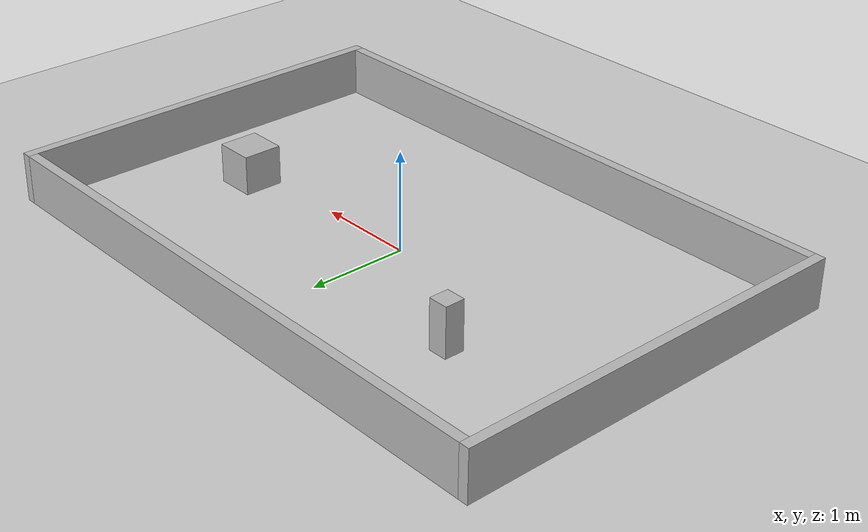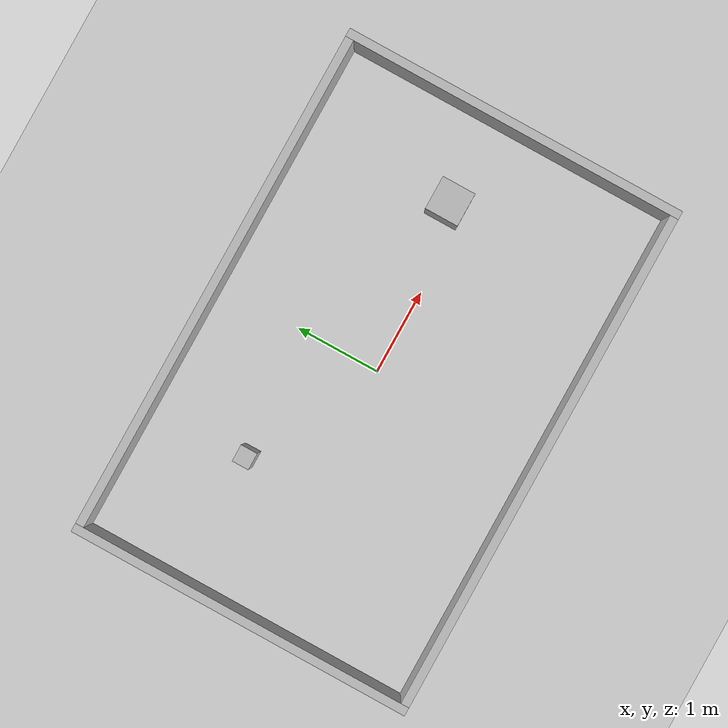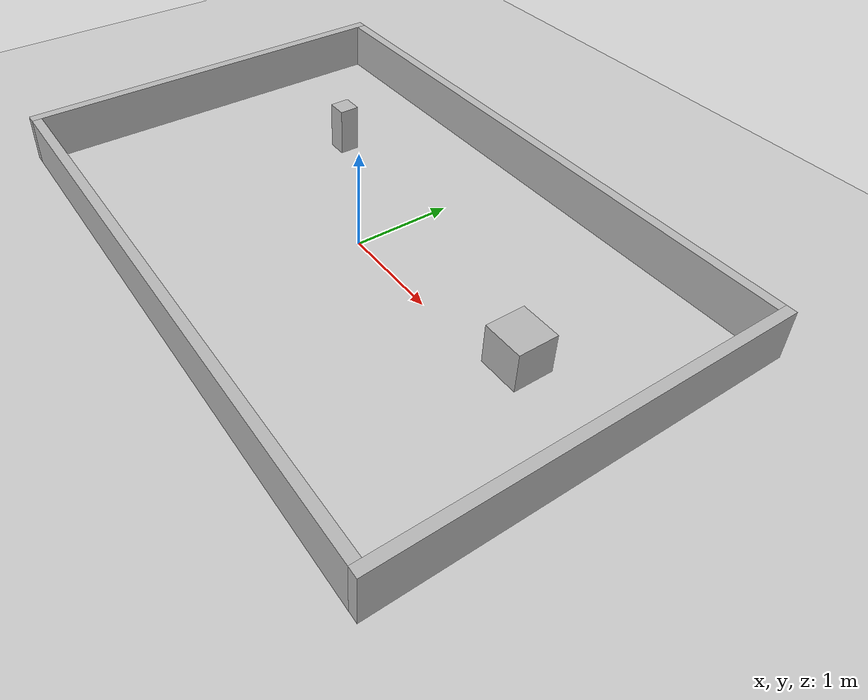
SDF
<?xml version="1.0"?>
<sdf version="1.6">
    <world name="puppy_room">
        <!-- a flat floor and light source -->
        <include><uri>model://ground_plane</uri></include>
        <include><uri>model://sun</uri></include>

        <model name="room">
            <static>true</static>
            <link name="wall_north">
                <!-- pose = x y z roll pitch yaw. z is half the height, so the wall sits on the floor -->
                <pose>0 2.0 0.25 0 0 0</pose>
                <collision name="wall_north_collision">
                    <geometry>
                        <box>
                            <size>6 0.1 0.5</size>
                        </box>
                    </geometry>
                </collision>
                <visual name="wall_north_visual">
                    <geometry>
                        <box>
                            <size>6 0.1 0.5</size>
                        </box>
                    </geometry>
                </visual>
            </link>
            <link name="wall_south">
                <!-- pose = x y z roll pitch yaw. z is half the height, so the wall sits on the floor -->
                <pose>0 -2.0 0.25 0 0 0</pose>
                <collision name="wall_south_collision">
                    <geometry>
                        <box>
                            <size>6 0.1 0.5</size>
                        </box>
                    </geometry>
                </collision>
                <visual name="wall_south_visual">
                    <geometry>
                        <box>
                            <size>6 0.1 0.5</size>
                        </box>
                    </geometry>
                </visual>
            </link>
            <link name="wall_east">
                <!-- pose = x y z roll pitch yaw. z is half the height, so the wall sits on the floor -->
                <pose>3.05 0 0.25 0 0 0</pose>
                <collision name="wall_east_collision">
                    <geometry>
                        <box>
                            <size>0.1 4.1 0.5</size>
                        </box>
                    </geometry>
                </collision>
                <visual name="wall_east_visual">
                    <geometry>
                        <box>
                            <size>0.1 4.1 0.5</size>
                        </box>
                    </geometry>
                </visual>
            </link>
            <link name="wall_west">
                <!-- pose = x y z roll pitch yaw. z is half the height, so the wall sits on the floor -->
                <pose>-3.05 0 0.25 0 0 0</pose>
                <collision name="wall_west_collision">
                    <geometry>
                        <box>
                            <size>0.1 4.1 0.5</size>
                        </box>
                    </geometry>
                </collision>
                <visual name="wall_west_visual">
                    <geometry>
                        <box>
                            <size>0.1 4.1 0.5</size>
                        </box>
                    </geometry>
                </visual>
            </link>

            <link name="box1">
                <!-- pose = x y z roll pitch yaw. z is half the height, so the wall sits on the floor -->
                <pose>-1.5 0.8 0.25 0 0 0</pose>

                <collision name="box1_collision">
                    <geometry>
                        <box>
                            <size>0.2 0.2 0.5</size>
                        </box>
                    </geometry>
                </collision>
                <visual name="box1_visual">
                    <geometry>
                        <box>
                            <size>0.2 0.2 0.5</size>
                        </box>
                    </geometry>
                </visual>
            </link>

            <link name="box2">
                <!-- pose = x y z roll pitch yaw. z is half the height, so the wall sits on the floor -->
                <pose>2 0.2 0.2 0 0 0</pose>
                <collision name="box2_collision">
                    <geometry>
                        <box>
                            <size>0.4 0.4 0.4</size>
                        </box>
                    </geometry>
                </collision>
                <visual name="box2_visual">
                    <geometry>
                        <box>
                            <size>0.4 0.4 0.4</size>
                        </box>
                    </geometry>
                </visual>
            </link>

        </model>
    </world>
</sdf>
